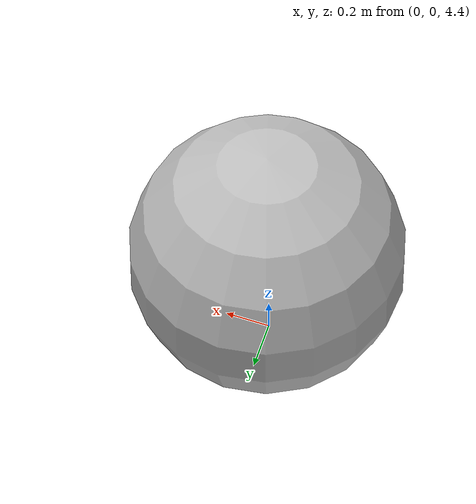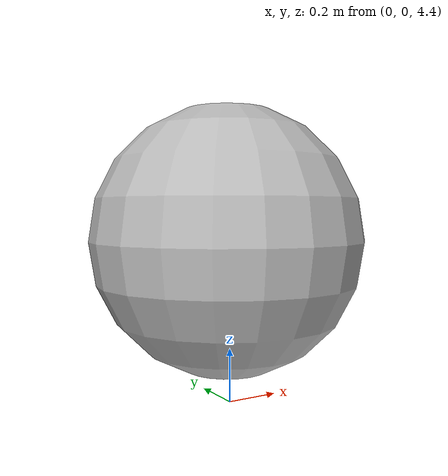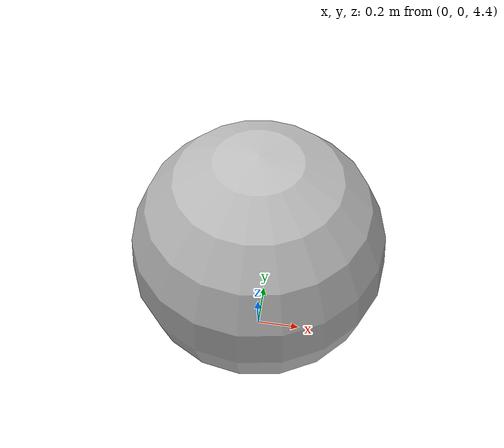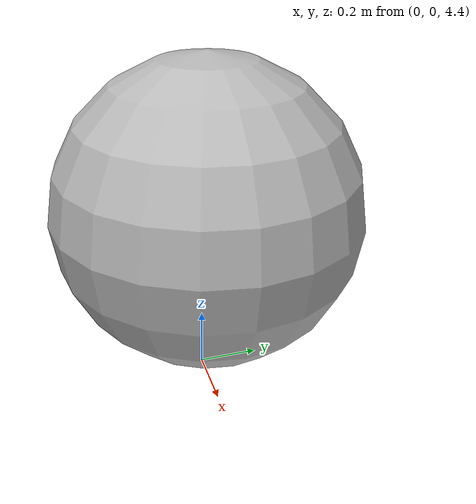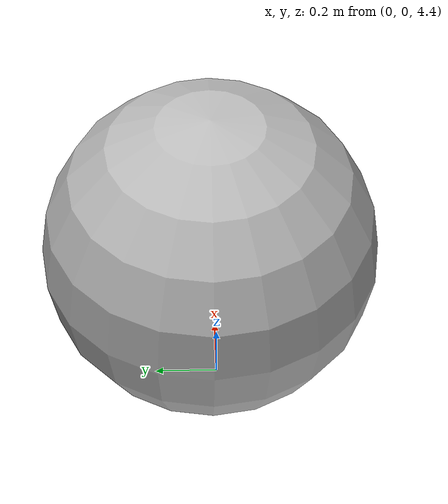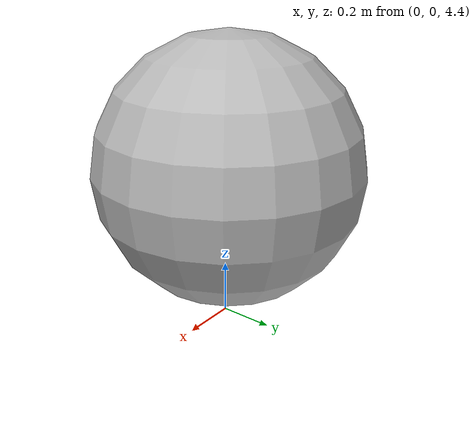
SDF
<?xml version="1.0" ?>
<sdf version="1.4">
  <model name="sphere">
    <pose>0 0.02 5.0 0 0 0</pose>
    <link name="sphere">
      <pose>0 0 0 0 0 0</pose>
      <inertial>
        <mass>1.</mass>
      </inertial>
      <visual name="sphere">
        <pose>0 0 0 0 0 0</pose>
        <geometry>
          <sphere>
            <radius>0.5</radius>
          </sphere>
        </geometry>
        <material/>
      </visual>
      <collision name="sphere">
        <geometry>
          <sphere>
            <radius>0.5</radius>
          </sphere>
        </geometry>
      </collision>
    </link>
    <static>1</static>
  </model>
</sdf>
